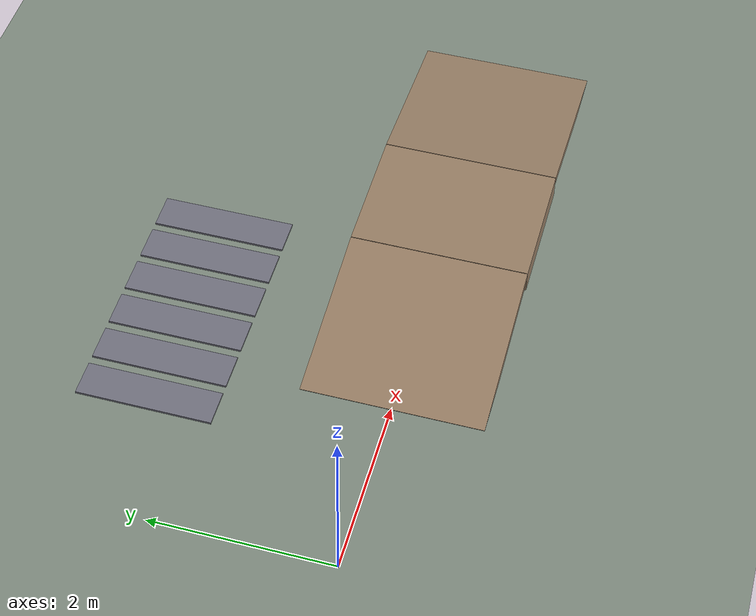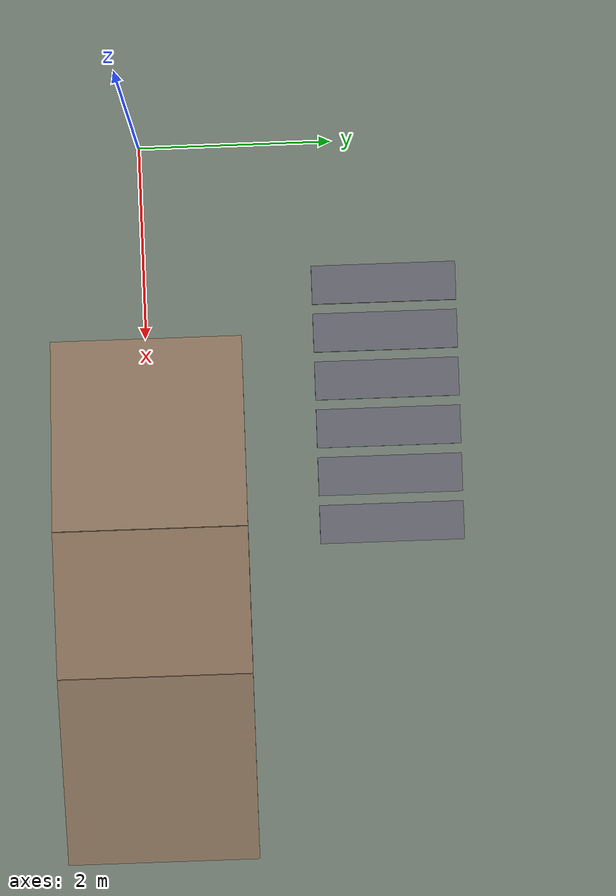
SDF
<?xml version="1.0"?>
<!-- HyperDog Gazebo Harmonic world (ramps and small steps). All worlds are named "hyperdog" so that
     the push (wrench) topics are /world/hyperdog/wrench[/persistent|/clear]. -->
<sdf version="1.10">
  <world name="hyperdog">
    <physics name="1ms" type="dart">
      <max_step_size>0.001</max_step_size>
      <real_time_factor>1.0</real_time_factor>
    </physics>
    <plugin filename="gz-sim-physics-system" name="gz::sim::systems::Physics"/>
    <plugin filename="gz-sim-user-commands-system" name="gz::sim::systems::UserCommands"/>
    <plugin filename="gz-sim-scene-broadcaster-system" name="gz::sim::systems::SceneBroadcaster"/>
    <plugin filename="gz-sim-sensors-system" name="gz::sim::systems::Sensors">
      <render_engine>ogre2</render_engine>
    </plugin>
    <plugin filename="gz-sim-imu-system" name="gz::sim::systems::Imu"/>
    <plugin filename="gz-sim-contact-system" name="gz::sim::systems::Contact"/>
    <plugin filename="gz-sim-apply-link-wrench-system" name="gz::sim::systems::ApplyLinkWrench"/>

    <gravity>0 0 -9.81</gravity>
    <scene>
      <ambient>0.6 0.6 0.6 1</ambient>
      <background>0.75 0.85 0.95 1</background>
      <grid>false</grid>
    </scene>
    <light type="directional" name="sun">
      <cast_shadows>true</cast_shadows>
      <pose>0 0 10 0 0 0</pose>
      <diffuse>0.9 0.9 0.9 1</diffuse>
      <specular>0.2 0.2 0.2 1</specular>
      <direction>-0.5 0.2 -0.9</direction>
    </light>

    <model name="ground_plane">
      <static>true</static>
      <link name="link">
        <collision name="collision">
          <geometry><plane><normal>0 0 1</normal><size>200 200</size></plane></geometry>
          <surface><friction><ode><mu>1.0</mu><mu2>1.0</mu2></ode></friction></surface>
        </collision>
        <visual name="visual">
          <geometry><plane><normal>0 0 1</normal><size>200 200</size></plane></geometry>
          <material><ambient>0.5 0.55 0.5 1</ambient><diffuse>0.5 0.55 0.5 1</diffuse></material>
        </visual>
      </link>
    </model>
    <model name="ramp_up">
      <static>true</static>
      <pose>2.990 0 0.090 0 -0.1396 0</pose>
      <link name="link">
        <collision name="collision"><geometry><box><size>2.000 2 0.1</size></box></geometry>
          <surface><friction><ode><mu>1.0</mu><mu2>1.0</mu2></ode></friction></surface></collision>
        <visual name="visual"><geometry><box><size>2.000 2 0.1</size></box></geometry>
          <material><ambient>0.6 0.5 0.4 1</ambient><diffuse>0.6 0.5 0.4 1</diffuse></material></visual>
      </link>
    </model>
    <model name="plateau">
      <static>true</static>
      <pose>4.731 0 0.139 0 0 0</pose>
      <link name="link">
        <collision name="collision"><geometry><box><size>1.5 2 0.278</size></box></geometry>
          <surface><friction><ode><mu>1.0</mu><mu2>1.0</mu2></ode></friction></surface></collision>
        <visual name="visual"><geometry><box><size>1.5 2 0.278</size></box></geometry>
          <material><ambient>0.6 0.5 0.4 1</ambient><diffuse>0.6 0.5 0.4 1</diffuse></material></visual>
      </link>
    </model>
    <model name="ramp_down">
      <static>true</static>
      <pose>6.471 0 0.090 0 0.1396 0</pose>
      <link name="link">
        <collision name="collision"><geometry><box><size>2.000 2 0.1</size></box></geometry>
          <surface><friction><ode><mu>1.0</mu><mu2>1.0</mu2></ode></friction></surface></collision>
        <visual name="visual"><geometry><box><size>2.000 2 0.1</size></box></geometry>
          <material><ambient>0.6 0.5 0.4 1</ambient><diffuse>0.6 0.5 0.4 1</diffuse></material></visual>
      </link>
    </model>
    <model name="slab_0">
      <static>true</static>
      <pose>1.50 2.5 0.0125 0 0 0</pose>
      <link name="link">
        <collision name="collision"><geometry><box><size>0.4 1.5 0.025</size></box></geometry>
          <surface><friction><ode><mu>1.0</mu><mu2>1.0</mu2></ode></friction></surface></collision>
        <visual name="visual"><geometry><box><size>0.4 1.5 0.025</size></box></geometry>
          <material><ambient>0.45 0.45 0.5 1</ambient><diffuse>0.45 0.45 0.5 1</diffuse></material></visual>
      </link>
    </model>
    <model name="slab_1">
      <static>true</static>
      <pose>2.00 2.5 0.0125 0 0 0</pose>
      <link name="link">
        <collision name="collision"><geometry><box><size>0.4 1.5 0.025</size></box></geometry>
          <surface><friction><ode><mu>1.0</mu><mu2>1.0</mu2></ode></friction></surface></collision>
        <visual name="visual"><geometry><box><size>0.4 1.5 0.025</size></box></geometry>
          <material><ambient>0.45 0.45 0.5 1</ambient><diffuse>0.45 0.45 0.5 1</diffuse></material></visual>
      </link>
    </model>
    <model name="slab_2">
      <static>true</static>
      <pose>2.50 2.5 0.0125 0 0 0</pose>
      <link name="link">
        <collision name="collision"><geometry><box><size>0.4 1.5 0.025</size></box></geometry>
          <surface><friction><ode><mu>1.0</mu><mu2>1.0</mu2></ode></friction></surface></collision>
        <visual name="visual"><geometry><box><size>0.4 1.5 0.025</size></box></geometry>
          <material><ambient>0.45 0.45 0.5 1</ambient><diffuse>0.45 0.45 0.5 1</diffuse></material></visual>
      </link>
    </model>
    <model name="slab_3">
      <static>true</static>
      <pose>3.00 2.5 0.0125 0 0 0</pose>
      <link name="link">
        <collision name="collision"><geometry><box><size>0.4 1.5 0.025</size></box></geometry>
          <surface><friction><ode><mu>1.0</mu><mu2>1.0</mu2></ode></friction></surface></collision>
        <visual name="visual"><geometry><box><size>0.4 1.5 0.025</size></box></geometry>
          <material><ambient>0.45 0.45 0.5 1</ambient><diffuse>0.45 0.45 0.5 1</diffuse></material></visual>
      </link>
    </model>
    <model name="slab_4">
      <static>true</static>
      <pose>3.50 2.5 0.0125 0 0 0</pose>
      <link name="link">
        <collision name="collision"><geometry><box><size>0.4 1.5 0.025</size></box></geometry>
          <surface><friction><ode><mu>1.0</mu><mu2>1.0</mu2></ode></friction></surface></collision>
        <visual name="visual"><geometry><box><size>0.4 1.5 0.025</size></box></geometry>
          <material><ambient>0.45 0.45 0.5 1</ambient><diffuse>0.45 0.45 0.5 1</diffuse></material></visual>
      </link>
    </model>
    <model name="slab_5">
      <static>true</static>
      <pose>4.00 2.5 0.0125 0 0 0</pose>
      <link name="link">
        <collision name="collision"><geometry><box><size>0.4 1.5 0.025</size></box></geometry>
          <surface><friction><ode><mu>1.0</mu><mu2>1.0</mu2></ode></friction></surface></collision>
        <visual name="visual"><geometry><box><size>0.4 1.5 0.025</size></box></geometry>
          <material><ambient>0.45 0.45 0.5 1</ambient><diffuse>0.45 0.45 0.5 1</diffuse></material></visual>
      </link>
    </model>
  </world>
</sdf>
